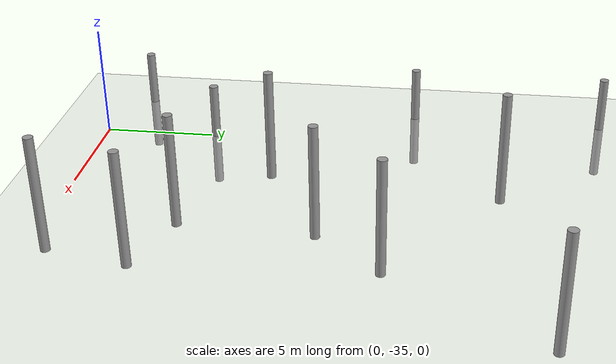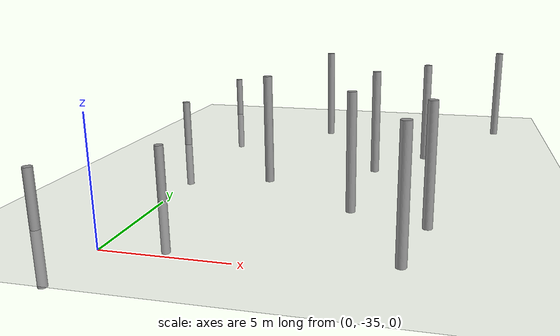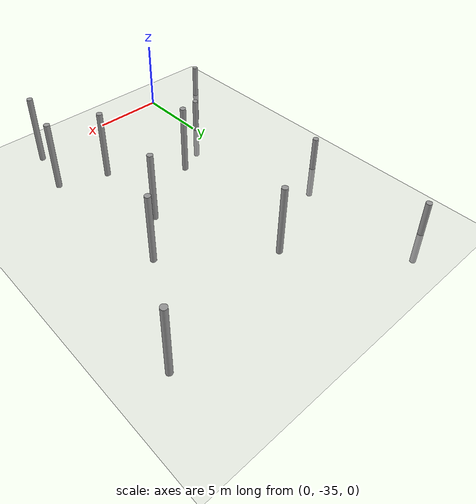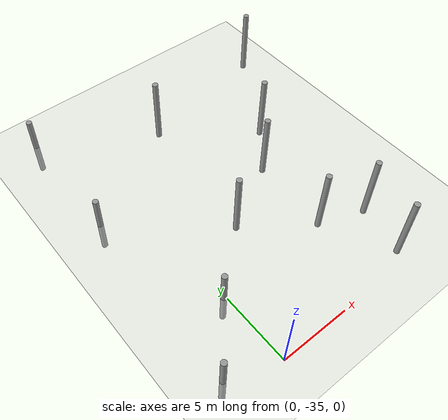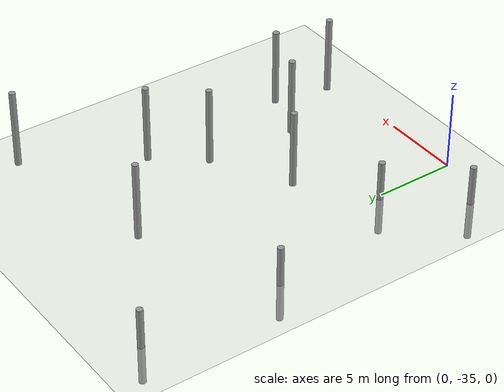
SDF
<sdf version="1.6">
 <world name="default">
  <model name="ground_plane">
   <static>1</static>
   <link name="link">
    <collision name="collision">
     <geometry><plane><normal>0 0 1</normal><size>100 100</size></plane></geometry>
     <surface><friction><ode><mu>100</mu><mu2>50</mu2></ode></friction></surface>
    </collision>
    <visual name="visual">
     <cast_shadows>0</cast_shadows>
     <geometry><plane><normal>0 0 1</normal><size>100 100</size></plane></geometry>
     <material>
      <script><uri>file://media/materials/scripts/gazebo.material</uri><name>Gazebo/Grey</name></script>
     </material>
    </visual>
   </link>
  </model>
  <model name="empty_pillars_8">
   <model name="empty_pillar_clone_31">
    <link name="link">
     <inertial>
      <mass>1</mass>
      <inertia><ixx>0.145833</ixx><ixy>0</ixy><ixz>0</ixz><iyy>0.145833</iyy><iyz>0</iyz><izz>0.125</izz></inertia>
     </inertial>
     <visual name="visual">
      <geometry><cylinder><radius>0.2</radius><length>5</length></cylinder></geometry>
      <material>
       <script><name>Gazebo/Grey</name><uri>file://media/materials/scripts/gazebo.material</uri></script>
       <shader type="vertex"><normal_map>__default__</normal_map></shader>
       <ambient>0.3 0.3 0.3 1</ambient>
       <diffuse>0.7 0.7 0.7 1</diffuse>
       <specular>0.01 0.01 0.01 1</specular>
       <emissive>0 0 0 1</emissive>
      </material>
     </visual>
     <collision name="collision">
      <geometry><cylinder><radius>0.05</radius><length>5</length></cylinder></geometry>
      <surface>
       <friction>
        <ode><mu>1</mu><mu2>1</mu2><fdir1>0 0 0</fdir1><slip1>0</slip1><slip2>0</slip2></ode>
        <torsional>
         <coefficient>1</coefficient>
         <patch_radius>0</patch_radius>
         <surface_radius>0</surface_radius>
         <use_patch_radius>1</use_patch_radius>
         <ode><slip>0</slip></ode>
        </torsional>
       </friction>
       <bounce><restitution_coefficient>0</restitution_coefficient><threshold>1e+06</threshold></bounce>
       <contact>
        <collide_without_contact>0</collide_without_contact>
        <collide_without_contact_bitmask>1</collide_without_contact_bitmask>
        <collide_bitmask>1</collide_bitmask>
        <ode>
         <soft_cfm>0</soft_cfm>
         <soft_erp>0.2</soft_erp>
         <kp>1e+13</kp>
         <kd>1</kd>
         <max_vel>0.01</max_vel>
         <min_depth>0</min_depth>
        </ode>
        <bullet>
         <split_impulse>1</split_impulse>
         <split_impulse_penetration_threshold>-0.01</split_impulse_penetration_threshold>
         <soft_cfm>0</soft_cfm>
         <soft_erp>0.2</soft_erp>
         <kp>1e+13</kp>
         <kd>1</kd>
        </bullet>
       </contact>
      </surface>
     </collision>
    </link>
    <static>0</static>
    <pose>22.0722 9.04182 0 0 -0 0</pose>
   </model>
   <model name="empty_pillar_clone_32">
    <link name="link">
     <inertial>
      <mass>1</mass>
      <inertia><ixx>0.145833</ixx><ixy>0</ixy><ixz>0</ixz><iyy>0.145833</iyy><iyz>0</iyz><izz>0.125</izz></inertia>
     </inertial>
     <visual name="visual">
      <geometry><cylinder><radius>0.2</radius><length>5</length></cylinder></geometry>
      <material>
       <script><name>Gazebo/Grey</name><uri>file://media/materials/scripts/gazebo.material</uri></script>
       <shader type="vertex"><normal_map>__default__</normal_map></shader>
       <ambient>0.3 0.3 0.3 1</ambient>
       <diffuse>0.7 0.7 0.7 1</diffuse>
       <specular>0.01 0.01 0.01 1</specular>
       <emissive>0 0 0 1</emissive>
      </material>
     </visual>
     <collision name="collision">
      <geometry><cylinder><radius>0.05</radius><length>5</length></cylinder></geometry>
      <surface>
       <friction>
        <ode><mu>1</mu><mu2>1</mu2><fdir1>0 0 0</fdir1><slip1>0</slip1><slip2>0</slip2></ode>
        <torsional>
         <coefficient>1</coefficient>
         <patch_radius>0</patch_radius>
         <surface_radius>0</surface_radius>
         <use_patch_radius>1</use_patch_radius>
         <ode><slip>0</slip></ode>
        </torsional>
       </friction>
       <bounce><restitution_coefficient>0</restitution_coefficient><threshold>1e+06</threshold></bounce>
       <contact>
        <collide_without_contact>0</collide_without_contact>
        <collide_without_contact_bitmask>1</collide_without_contact_bitmask>
        <collide_bitmask>1</collide_bitmask>
        <ode>
         <soft_cfm>0</soft_cfm>
         <soft_erp>0.2</soft_erp>
         <kp>1e+13</kp>
         <kd>1</kd>
         <max_vel>0.01</max_vel>
         <min_depth>0</min_depth>
        </ode>
        <bullet>
         <split_impulse>1</split_impulse>
         <split_impulse_penetration_threshold>-0.01</split_impulse_penetration_threshold>
         <soft_cfm>0</soft_cfm>
         <soft_erp>0.2</soft_erp>
         <kp>1e+13</kp>
         <kd>1</kd>
        </bullet>
       </contact>
      </surface>
     </collision>
    </link>
    <static>0</static>
    <pose>21.9854 0.15966 0 0 -0 0</pose>
   </model>
   <model name="empty_pillar_clone_33">
    <link name="link">
     <inertial>
      <mass>1</mass>
      <inertia><ixx>0.145833</ixx><ixy>0</ixy><ixz>0</ixz><iyy>0.145833</iyy><iyz>0</iyz><izz>0.125</izz></inertia>
     </inertial>
     <visual name="visual">
      <geometry><cylinder><radius>0.2</radius><length>5</length></cylinder></geometry>
      <material>
       <script><name>Gazebo/Grey</name><uri>file://media/materials/scripts/gazebo.material</uri></script>
       <shader type="vertex"><normal_map>__default__</normal_map></shader>
       <ambient>0.3 0.3 0.3 1</ambient>
       <diffuse>0.7 0.7 0.7 1</diffuse>
       <specular>0.01 0.01 0.01 1</specular>
       <emissive>0 0 0 1</emissive>
      </material>
     </visual>
     <collision name="collision">
      <geometry><cylinder><radius>0.05</radius><length>5</length></cylinder></geometry>
      <surface>
       <friction>
        <ode><mu>1</mu><mu2>1</mu2><fdir1>0 0 0</fdir1><slip1>0</slip1><slip2>0</slip2></ode>
        <torsional>
         <coefficient>1</coefficient>
         <patch_radius>0</patch_radius>
         <surface_radius>0</surface_radius>
         <use_patch_radius>1</use_patch_radius>
         <ode><slip>0</slip></ode>
        </torsional>
       </friction>
       <bounce><restitution_coefficient>0</restitution_coefficient><threshold>1e+06</threshold></bounce>
       <contact>
        <collide_without_contact>0</collide_without_contact>
        <collide_without_contact_bitmask>1</collide_without_contact_bitmask>
        <collide_bitmask>1</collide_bitmask>
        <ode>
         <soft_cfm>0</soft_cfm>
         <soft_erp>0.2</soft_erp>
         <kp>1e+13</kp>
         <kd>1</kd>
         <max_vel>0.01</max_vel>
         <min_depth>0</min_depth>
        </ode>
        <bullet>
         <split_impulse>1</split_impulse>
         <split_impulse_penetration_threshold>-0.01</split_impulse_penetration_threshold>
         <soft_cfm>0</soft_cfm>
         <soft_erp>0.2</soft_erp>
         <kp>1e+13</kp>
         <kd>1</kd>
        </bullet>
       </contact>
      </surface>
     </collision>
    </link>
    <static>0</static>
    <pose>21.5621 -13.0704 0 0 -0 0</pose>
   </model>
   <model name="empty_pillar_clone_6">
    <link name="link">
     <inertial>
      <mass>1</mass>
      <inertia><ixx>0.145833</ixx><ixy>0</ixy><ixz>0</ixz><iyy>0.145833</iyy><iyz>0</iyz><izz>0.125</izz></inertia>
     </inertial>
     <visual name="visual">
      <geometry><cylinder><radius>0.2</radius><length>5</length></cylinder></geometry>
      <material>
       <script><name>Gazebo/Grey</name><uri>file://media/materials/scripts/gazebo.material</uri></script>
       <shader type="vertex"><normal_map>__default__</normal_map></shader>
       <ambient>0.3 0.3 0.3 1</ambient>
       <diffuse>0.7 0.7 0.7 1</diffuse>
       <specular>0.01 0.01 0.01 1</specular>
       <emissive>0 0 0 1</emissive>
      </material>
     </visual>
     <collision name="collision">
      <geometry><cylinder><radius>0.05</radius><length>5</length></cylinder></geometry>
      <surface>
       <friction>
        <ode><mu>1</mu><mu2>1</mu2><fdir1>0 0 0</fdir1><slip1>0</slip1><slip2>0</slip2></ode>
        <torsional>
         <coefficient>1</coefficient>
         <patch_radius>0</patch_radius>
         <surface_radius>0</surface_radius>
         <use_patch_radius>1</use_patch_radius>
         <ode><slip>0</slip></ode>
        </torsional>
       </friction>
       <bounce><restitution_coefficient>0</restitution_coefficient><threshold>1e+06</threshold></bounce>
       <contact>
        <collide_without_contact>0</collide_without_contact>
        <collide_without_contact_bitmask>1</collide_without_contact_bitmask>
        <collide_bitmask>1</collide_bitmask>
        <ode>
         <soft_cfm>0</soft_cfm>
         <soft_erp>0.2</soft_erp>
         <kp>1e+13</kp>
         <kd>1</kd>
         <max_vel>0.01</max_vel>
         <min_depth>0</min_depth>
        </ode>
        <bullet>
         <split_impulse>1</split_impulse>
         <split_impulse_penetration_threshold>-0.01</split_impulse_penetration_threshold>
         <soft_cfm>0</soft_cfm>
         <soft_erp>0.2</soft_erp>
         <kp>1e+13</kp>
         <kd>1</kd>
        </bullet>
       </contact>
      </surface>
     </collision>
    </link>
    <static>0</static>
    <pose>24.9156 -9.11394 0 0 -0 0</pose>
   </model>
   <static>0</static>
   <pose>-25.0415 -20.6705 0 0 -0 0</pose>
  </model>
  <model name="empty_pillars_9">
   <model name="empty_pillar_clone_14">
    <link name="link">
     <inertial>
      <mass>1</mass>
      <inertia><ixx>0.145833</ixx><ixy>0</ixy><ixz>0</ixz><iyy>0.145833</iyy><iyz>0</iyz><izz>0.125</izz></inertia>
     </inertial>
     <visual name="visual">
      <geometry><cylinder><radius>0.2</radius><length>5</length></cylinder></geometry>
      <material>
       <script><name>Gazebo/Grey</name><uri>file://media/materials/scripts/gazebo.material</uri></script>
       <shader type="vertex"><normal_map>__default__</normal_map></shader>
       <ambient>0.3 0.3 0.3 1</ambient>
       <diffuse>0.7 0.7 0.7 1</diffuse>
       <specular>0.01 0.01 0.01 1</specular>
       <emissive>0 0 0 1</emissive>
      </material>
     </visual>
     <collision name="collision">
      <geometry><cylinder><radius>0.05</radius><length>5</length></cylinder></geometry>
      <surface>
       <friction>
        <ode><mu>1</mu><mu2>1</mu2><fdir1>0 0 0</fdir1><slip1>0</slip1><slip2>0</slip2></ode>
        <torsional>
         <coefficient>1</coefficient>
         <patch_radius>0</patch_radius>
         <surface_radius>0</surface_radius>
         <use_patch_radius>1</use_patch_radius>
         <ode><slip>0</slip></ode>
        </torsional>
       </friction>
       <bounce><restitution_coefficient>0</restitution_coefficient><threshold>1e+06</threshold></bounce>
       <contact>
        <collide_without_contact>0</collide_without_contact>
        <collide_without_contact_bitmask>1</collide_without_contact_bitmask>
        <collide_bitmask>1</collide_bitmask>
        <ode>
         <soft_cfm>0</soft_cfm>
         <soft_erp>0.2</soft_erp>
         <kp>1e+13</kp>
         <kd>1</kd>
         <max_vel>0.01</max_vel>
         <min_depth>0</min_depth>
        </ode>
        <bullet>
         <split_impulse>1</split_impulse>
         <split_impulse_penetration_threshold>-0.01</split_impulse_penetration_threshold>
         <soft_cfm>0</soft_cfm>
         <soft_erp>0.2</soft_erp>
         <kp>1e+13</kp>
         <kd>1</kd>
        </bullet>
       </contact>
      </surface>
     </collision>
    </link>
    <static>0</static>
    <pose>-14.0146 0.646152 0 0 -0 0</pose>
   </model>
   <model name="empty_pillar_clone_18">
    <link name="link">
     <inertial>
      <mass>1</mass>
      <inertia><ixx>0.145833</ixx><ixy>0</ixy><ixz>0</ixz><iyy>0.145833</iyy><iyz>0</iyz><izz>0.125</izz></inertia>
     </inertial>
     <visual name="visual">
      <geometry><cylinder><radius>0.2</radius><length>5</length></cylinder></geometry>
      <material>
       <script><name>Gazebo/Grey</name><uri>file://media/materials/scripts/gazebo.material</uri></script>
       <shader type="vertex"><normal_map>__default__</normal_map></shader>
       <ambient>0.3 0.3 0.3 1</ambient>
       <diffuse>0.7 0.7 0.7 1</diffuse>
       <specular>0.01 0.01 0.01 1</specular>
       <emissive>0 0 0 1</emissive>
      </material>
     </visual>
     <collision name="collision">
      <geometry><cylinder><radius>0.05</radius><length>5</length></cylinder></geometry>
      <surface>
       <friction>
        <ode><mu>1</mu><mu2>1</mu2><fdir1>0 0 0</fdir1><slip1>0</slip1><slip2>0</slip2></ode>
        <torsional>
         <coefficient>1</coefficient>
         <patch_radius>0</patch_radius>
         <surface_radius>0</surface_radius>
         <use_patch_radius>1</use_patch_radius>
         <ode><slip>0</slip></ode>
        </torsional>
       </friction>
       <bounce><restitution_coefficient>0</restitution_coefficient><threshold>1e+06</threshold></bounce>
       <contact>
        <collide_without_contact>0</collide_without_contact>
        <collide_without_contact_bitmask>1</collide_without_contact_bitmask>
        <collide_bitmask>1</collide_bitmask>
        <ode>
         <soft_cfm>0</soft_cfm>
         <soft_erp>0.2</soft_erp>
         <kp>1e+13</kp>
         <kd>1</kd>
         <max_vel>0.01</max_vel>
         <min_depth>0</min_depth>
        </ode>
        <bullet>
         <split_impulse>1</split_impulse>
         <split_impulse_penetration_threshold>-0.01</split_impulse_penetration_threshold>
         <soft_cfm>0</soft_cfm>
         <soft_erp>0.2</soft_erp>
         <kp>1e+13</kp>
         <kd>1</kd>
        </bullet>
       </contact>
      </surface>
     </collision>
    </link>
    <static>0</static>
    <pose>-20.0146 5.15966 0 0 -0 0</pose>
   </model>
   <model name="empty_pillar_clone_19">
    <link name="link">
     <inertial>
      <mass>1</mass>
      <inertia><ixx>0.145833</ixx><ixy>0</ixy><ixz>0</ixz><iyy>0.145833</iyy><iyz>0</iyz><izz>0.125</izz></inertia>
     </inertial>
     <visual name="visual">
      <geometry><cylinder><radius>0.2</radius><length>5</length></cylinder></geometry>
      <material>
       <script><name>Gazebo/Grey</name><uri>file://media/materials/scripts/gazebo.material</uri></script>
       <shader type="vertex"><normal_map>__default__</normal_map></shader>
       <ambient>0.3 0.3 0.3 1</ambient>
       <diffuse>0.7 0.7 0.7 1</diffuse>
       <specular>0.01 0.01 0.01 1</specular>
       <emissive>0 0 0 1</emissive>
      </material>
     </visual>
     <collision name="collision">
      <geometry><cylinder><radius>0.05</radius><length>5</length></cylinder></geometry>
      <surface>
       <friction>
        <ode><mu>1</mu><mu2>1</mu2><fdir1>0 0 0</fdir1><slip1>0</slip1><slip2>0</slip2></ode>
        <torsional>
         <coefficient>1</coefficient>
         <patch_radius>0</patch_radius>
         <surface_radius>0</surface_radius>
         <use_patch_radius>1</use_patch_radius>
         <ode><slip>0</slip></ode>
        </torsional>
       </friction>
       <bounce><restitution_coefficient>0</restitution_coefficient><threshold>1e+06</threshold></bounce>
       <contact>
        <collide_without_contact>0</collide_without_contact>
        <collide_without_contact_bitmask>1</collide_without_contact_bitmask>
        <collide_bitmask>1</collide_bitmask>
        <ode>
         <soft_cfm>0</soft_cfm>
         <soft_erp>0.2</soft_erp>
         <kp>1e+13</kp>
         <kd>1</kd>
         <max_vel>0.01</max_vel>
         <min_depth>0</min_depth>
        </ode>
        <bullet>
         <split_impulse>1</split_impulse>
         <split_impulse_penetration_threshold>-0.01</split_impulse_penetration_threshold>
         <soft_cfm>0</soft_cfm>
         <soft_erp>0.2</soft_erp>
         <kp>1e+13</kp>
         <kd>1</kd>
        </bullet>
       </contact>
      </surface>
     </collision>
    </link>
    <static>0</static>
    <pose>-10.0146 7.15966 0 0 -0 0</pose>
   </model>
   <model name="empty_pillar_clone_36">
    <link name="link">
     <inertial>
      <mass>1</mass>
      <inertia><ixx>0.145833</ixx><ixy>0</ixy><ixz>0</ixz><iyy>0.145833</iyy><iyz>0</iyz><izz>0.125</izz></inertia>
     </inertial>
     <visual name="visual">
      <geometry><cylinder><radius>0.2</radius><length>5</length></cylinder></geometry>
      <material>
       <script><name>Gazebo/Grey</name><uri>file://media/materials/scripts/gazebo.material</uri></script>
       <shader type="vertex"><normal_map>__default__</normal_map></shader>
       <ambient>0.3 0.3 0.3 1</ambient>
       <diffuse>0.7 0.7 0.7 1</diffuse>
       <specular>0.01 0.01 0.01 1</specular>
       <emissive>0 0 0 1</emissive>
      </material>
     </visual>
     <collision name="collision">
      <geometry><cylinder><radius>0.05</radius><length>5</length></cylinder></geometry>
      <surface>
       <friction>
        <ode><mu>1</mu><mu2>1</mu2><fdir1>0 0 0</fdir1><slip1>0</slip1><slip2>0</slip2></ode>
        <torsional>
         <coefficient>1</coefficient>
         <patch_radius>0</patch_radius>
         <surface_radius>0</surface_radius>
         <use_patch_radius>1</use_patch_radius>
         <ode><slip>0</slip></ode>
        </torsional>
       </friction>
       <bounce><restitution_coefficient>0</restitution_coefficient><threshold>1e+06</threshold></bounce>
       <contact>
        <collide_without_contact>0</collide_without_contact>
        <collide_without_contact_bitmask>1</collide_without_contact_bitmask>
        <collide_bitmask>1</collide_bitmask>
        <ode>
         <soft_cfm>0</soft_cfm>
         <soft_erp>0.2</soft_erp>
         <kp>1e+13</kp>
         <kd>1</kd>
         <max_vel>0.01</max_vel>
         <min_depth>0</min_depth>
        </ode>
        <bullet>
         <split_impulse>1</split_impulse>
         <split_impulse_penetration_threshold>-0.01</split_impulse_penetration_threshold>
         <soft_cfm>0</soft_cfm>
         <soft_erp>0.2</soft_erp>
         <kp>1e+13</kp>
         <kd>1</kd>
        </bullet>
       </contact>
      </surface>
     </collision>
    </link>
    <static>0</static>
    <pose>-21.0146 -4.84034 0 0 -0 0</pose>
   </model>
   <model name="empty_pillar_clone_37">
    <link name="link">
     <inertial>
      <mass>1</mass>
      <inertia><ixx>0.145833</ixx><ixy>0</ixy><ixz>0</ixz><iyy>0.145833</iyy><iyz>0</iyz><izz>0.125</izz></inertia>
     </inertial>
     <visual name="visual">
      <geometry><cylinder><radius>0.2</radius><length>5</length></cylinder></geometry>
      <material>
       <script><name>Gazebo/Grey</name><uri>file://media/materials/scripts/gazebo.material</uri></script>
       <shader type="vertex"><normal_map>__default__</normal_map></shader>
       <ambient>0.3 0.3 0.3 1</ambient>
       <diffuse>0.7 0.7 0.7 1</diffuse>
       <specular>0.01 0.01 0.01 1</specular>
       <emissive>0 0 0 1</emissive>
      </material>
     </visual>
     <collision name="collision">
      <geometry><cylinder><radius>0.05</radius><length>5</length></cylinder></geometry>
      <surface>
       <friction>
        <ode><mu>1</mu><mu2>1</mu2><fdir1>0 0 0</fdir1><slip1>0</slip1><slip2>0</slip2></ode>
        <torsional>
         <coefficient>1</coefficient>
         <patch_radius>0</patch_radius>
         <surface_radius>0</surface_radius>
         <use_patch_radius>1</use_patch_radius>
         <ode><slip>0</slip></ode>
        </torsional>
       </friction>
       <bounce><restitution_coefficient>0</restitution_coefficient><threshold>1e+06</threshold></bounce>
       <contact>
        <collide_without_contact>0</collide_without_contact>
        <collide_without_contact_bitmask>1</collide_without_contact_bitmask>
        <collide_bitmask>1</collide_bitmask>
        <ode>
         <soft_cfm>0</soft_cfm>
         <soft_erp>0.2</soft_erp>
         <kp>1e+13</kp>
         <kd>1</kd>
         <max_vel>0.01</max_vel>
         <min_depth>0</min_depth>
        </ode>
        <bullet>
         <split_impulse>1</split_impulse>
         <split_impulse_penetration_threshold>-0.01</split_impulse_penetration_threshold>
         <soft_cfm>0</soft_cfm>
         <soft_erp>0.2</soft_erp>
         <kp>1e+13</kp>
         <kd>1</kd>
        </bullet>
       </contact>
      </surface>
     </collision>
    </link>
    <static>0</static>
    <pose>-16.6035 -7.98282 0 0 -0 0</pose>
   </model>
   <model name="empty_pillar_clone_38">
    <link name="link">
     <inertial>
      <mass>1</mass>
      <inertia><ixx>0.145833</ixx><ixy>0</ixy><ixz>0</ixz><iyy>0.145833</iyy><iyz>0</iyz><izz>0.125</izz></inertia>
     </inertial>
     <visual name="visual">
      <geometry><cylinder><radius>0.2</radius><length>5</length></cylinder></geometry>
      <material>
       <script><name>Gazebo/Grey</name><uri>file://media/materials/scripts/gazebo.material</uri></script>
       <shader type="vertex"><normal_map>__default__</normal_map></shader>
       <ambient>0.3 0.3 0.3 1</ambient>
       <diffuse>0.7 0.7 0.7 1</diffuse>
       <specular>0.01 0.01 0.01 1</specular>
       <emissive>0 0 0 1</emissive>
      </material>
     </visual>
     <collision name="collision">
      <geometry><cylinder><radius>0.05</radius><length>5</length></cylinder></geometry>
      <surface>
       <friction>
        <ode><mu>1</mu><mu2>1</mu2><fdir1>0 0 0</fdir1><slip1>0</slip1><slip2>0</slip2></ode>
        <torsional>
         <coefficient>1</coefficient>
         <patch_radius>0</patch_radius>
         <surface_radius>0</surface_radius>
         <use_patch_radius>1</use_patch_radius>
         <ode><slip>0</slip></ode>
        </torsional>
       </friction>
       <bounce><restitution_coefficient>0</restitution_coefficient><threshold>1e+06</threshold></bounce>
       <contact>
        <collide_without_contact>0</collide_without_contact>
        <collide_without_contact_bitmask>1</collide_without_contact_bitmask>
        <collide_bitmask>1</collide_bitmask>
        <ode>
         <soft_cfm>0</soft_cfm>
         <soft_erp>0.2</soft_erp>
         <kp>1e+13</kp>
         <kd>1</kd>
         <max_vel>0.01</max_vel>
         <min_depth>0</min_depth>
        </ode>
        <bullet>
         <split_impulse>1</split_impulse>
         <split_impulse_penetration_threshold>-0.01</split_impulse_penetration_threshold>
         <soft_cfm>0</soft_cfm>
         <soft_erp>0.2</soft_erp>
         <kp>1e+13</kp>
         <kd>1</kd>
        </bullet>
       </contact>
      </surface>
     </collision>
    </link>
    <static>0</static>
    <pose>-16.33 -2.21607 0 0 -0 0</pose>
   </model>
   <model name="empty_pillar_clone_39">
    <link name="link">
     <inertial>
      <mass>1</mass>
      <inertia><ixx>0.145833</ixx><ixy>0</ixy><ixz>0</ixz><iyy>0.145833</iyy><iyz>0</iyz><izz>0.125</izz></inertia>
     </inertial>
     <visual name="visual">
      <geometry><cylinder><radius>0.2</radius><length>5</length></cylinder></geometry>
      <material>
       <script><name>Gazebo/Grey</name><uri>file://media/materials/scripts/gazebo.material</uri></script>
       <shader type="vertex"><normal_map>__default__</normal_map></shader>
       <ambient>0.3 0.3 0.3 1</ambient>
       <diffuse>0.7 0.7 0.7 1</diffuse>
       <specular>0.01 0.01 0.01 1</specular>
       <emissive>0 0 0 1</emissive>
      </material>
     </visual>
     <collision name="collision">
      <geometry><cylinder><radius>0.05</radius><length>5</length></cylinder></geometry>
      <surface>
       <friction>
        <ode><mu>1</mu><mu2>1</mu2><fdir1>0 0 0</fdir1><slip1>0</slip1><slip2>0</slip2></ode>
        <torsional>
         <coefficient>1</coefficient>
         <patch_radius>0</patch_radius>
         <surface_radius>0</surface_radius>
         <use_patch_radius>1</use_patch_radius>
         <ode><slip>0</slip></ode>
        </torsional>
       </friction>
       <bounce><restitution_coefficient>0</restitution_coefficient><threshold>1e+06</threshold></bounce>
       <contact>
        <collide_without_contact>0</collide_without_contact>
        <collide_without_contact_bitmask>1</collide_without_contact_bitmask>
        <collide_bitmask>1</collide_bitmask>
        <ode>
         <soft_cfm>0</soft_cfm>
         <soft_erp>0.2</soft_erp>
         <kp>1e+13</kp>
         <kd>1</kd>
         <max_vel>0.01</max_vel>
         <min_depth>0</min_depth>
        </ode>
        <bullet>
         <split_impulse>1</split_impulse>
         <split_impulse_penetration_threshold>-0.01</split_impulse_penetration_threshold>
         <soft_cfm>0</soft_cfm>
         <soft_erp>0.2</soft_erp>
         <kp>1e+13</kp>
         <kd>1</kd>
        </bullet>
       </contact>
      </surface>
     </collision>
    </link>
    <static>0</static>
    <pose>-13.4361 -9.12638 0 0 -0 0</pose>
   </model>
   <model name="empty_pillar_clone_41">
    <link name="link">
     <inertial>
      <mass>1</mass>
      <inertia><ixx>0.145833</ixx><ixy>0</ixy><ixz>0</ixz><iyy>0.145833</iyy><iyz>0</iyz><izz>0.125</izz></inertia>
     </inertial>
     <visual name="visual">
      <geometry><cylinder><radius>0.2</radius><length>5</length></cylinder></geometry>
      <material>
       <script><name>Gazebo/Grey</name><uri>file://media/materials/scripts/gazebo.material</uri></script>
       <shader type="vertex"><normal_map>__default__</normal_map></shader>
       <ambient>0.3 0.3 0.3 1</ambient>
       <diffuse>0.7 0.7 0.7 1</diffuse>
       <specular>0.01 0.01 0.01 1</specular>
       <emissive>0 0 0 1</emissive>
      </material>
     </visual>
     <collision name="collision">
      <geometry><cylinder><radius>0.05</radius><length>5</length></cylinder></geometry>
      <surface>
       <friction>
        <ode><mu>1</mu><mu2>1</mu2><fdir1>0 0 0</fdir1><slip1>0</slip1><slip2>0</slip2></ode>
        <torsional>
         <coefficient>1</coefficient>
         <patch_radius>0</patch_radius>
         <surface_radius>0</surface_radius>
         <use_patch_radius>1</use_patch_radius>
         <ode><slip>0</slip></ode>
        </torsional>
       </friction>
       <bounce><restitution_coefficient>0</restitution_coefficient><threshold>1e+06</threshold></bounce>
       <contact>
        <collide_without_contact>0</collide_without_contact>
        <collide_without_contact_bitmask>1</collide_without_contact_bitmask>
        <collide_bitmask>1</collide_bitmask>
        <ode>
         <soft_cfm>0</soft_cfm>
         <soft_erp>0.2</soft_erp>
         <kp>1e+13</kp>
         <kd>1</kd>
         <max_vel>0.01</max_vel>
         <min_depth>0</min_depth>
        </ode>
        <bullet>
         <split_impulse>1</split_impulse>
         <split_impulse_penetration_threshold>-0.01</split_impulse_penetration_threshold>
         <soft_cfm>0</soft_cfm>
         <soft_erp>0.2</soft_erp>
         <kp>1e+13</kp>
         <kd>1</kd>
        </bullet>
       </contact>
      </surface>
     </collision>
    </link>
    <static>0</static>
    <pose>-14.1448 -12.6326 0 0 -0 0</pose>
   </model>
   <static>0</static>
   <pose>24.7676 -21.5571 2.56943 0 -0 0</pose>
  </model>
 </world>
</sdf>
